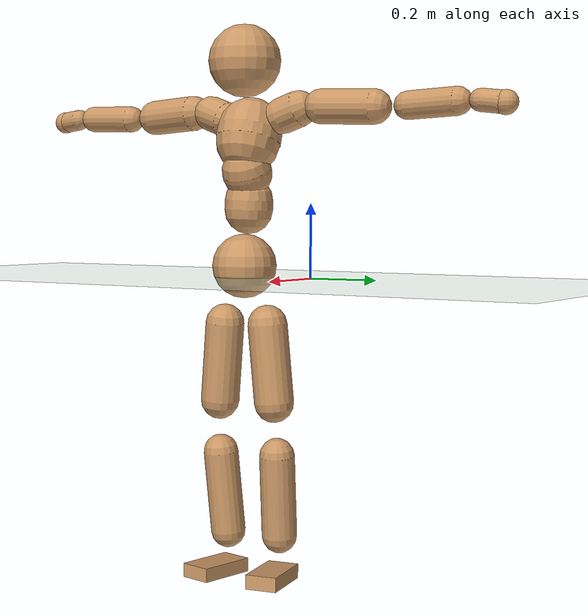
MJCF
<mujoco model="humanoid">
  <compiler coordinate="local"/>
  <default>
    <joint damping="0.0" armature="0.01" stiffness="0.0" limited="true"/>
    <geom conaffinity="1" condim="3" contype="7" margin="0.001" rgba="0.8 0.6 .4 1"/>
  </default>
  <asset>
    <texture type="skybox" builtin="gradient" rgb1=".4 .5 .6" rgb2="0 0 0" width="100" height="100"/>
    <texture builtin="flat" height="1278" mark="cross" markrgb="1 1 1" name="texgeom" random="0.01" rgb1="0.8 0.6 0.4" rgb2="0.8 0.6 0.4" type="cube" width="127"/>
    <texture builtin="checker" height="100" name="texplane" rgb1="0 0 0" rgb2="0.8 0.8 0.8" type="2d" width="100"/>
    <material name="MatPlane" reflectance="0.5" shininess="1" specular="1" texrepeat="60 60" texture="texplane"/>
    <material name="geom" texture="texgeom" texuniform="true"/>
  </asset>
  <worldbody>
    <light cutoff="100" diffuse="1 1 1" dir="-0 0 -1.3" directional="true" exponent="1" pos="0 0 1.3" specular=".1 .1 .1"/>
    <geom conaffinity="1" condim="3" name="floor" pos="0 0 0" rgba="0.8 0.9 0.8 1" size="100 100 .2" type="plane" material="MatPlane"/>
    <body name="Pelvis" pos="-0.0017 -0.2168 0.0284">
      <freejoint name="Pelvis"/>
      <geom type="sphere" contype="1" conaffinity="1" density="500" size="0.0887" pos="0.0000 0.0000 0.0000" name="Pelvis"/>
      <body name="L_Hip" pos="-0.0064 0.0651 -0.0884">
        <joint name="L_Hip_x" type="hinge" pos="0 0 0" axis="1 0 0" stiffness="800" damping="80" armature="0.02" range="-180.0000 180.0000"/>
        <joint name="L_Hip_y" type="hinge" pos="0 0 0" axis="0 1 0" stiffness="800" damping="80" armature="0.02" range="-180.0000 180.0000"/>
        <joint name="L_Hip_z" type="hinge" pos="0 0 0" axis="0 0 1" stiffness="800" damping="80" armature="0.02" range="-180.0000 180.0000"/>
        <geom type="capsule" contype="1" conaffinity="1" density="500" fromto="-0.0016 0.0062 -0.0717 -0.0063 0.0246 -0.2867" size="0.0548" name="L_Hip"/>
        <body name="L_Knee" pos="-0.0078 0.0308 -0.3583">
          <joint name="L_Knee_x" type="hinge" pos="0 0 0" axis="1 0 0" stiffness="800" damping="80" armature="0.02" range="-180.0000 180.0000"/>
          <joint name="L_Knee_y" type="hinge" pos="0 0 0" axis="0 1 0" stiffness="800" damping="80" armature="0.02" range="-180.0000 180.0000"/>
          <joint name="L_Knee_z" type="hinge" pos="0 0 0" axis="0 0 1" stiffness="800" damping="80" armature="0.02" range="-180.0000 180.0000"/>
          <geom type="capsule" contype="1" conaffinity="1" density="500" fromto="-0.0078 -0.0024 -0.0764 -0.0313 -0.0096 -0.3055" size="0.0488" name="L_Knee"/>
          <body name="L_Ankle" pos="-0.0391 -0.012 -0.3819">
            <joint name="L_Ankle_x" type="hinge" pos="0 0 0" axis="1 0 0" stiffness="800" damping="80" armature="0.02" range="-180.0000 180.0000"/>
            <joint name="L_Ankle_y" type="hinge" pos="0 0 0" axis="0 1 0" stiffness="800" damping="80" armature="0.02" range="-180.0000 180.0000"/>
            <joint name="L_Ankle_z" type="hinge" pos="0 0 0" axis="0 0 1" stiffness="800" damping="80" armature="0.02" range="-180.0000 180.0000"/>
            <geom type="box" contype="1" conaffinity="1" density="500" pos="0.0569 0.0110 -0.0276" size="0.0807 0.0444 0.02" quat="0.9954 0.0000 0.0000 0.0956" name="L_Ankle"/>
            <body name="L_Toe" pos="0.1138 0.0221 -0.0552">
              <joint name="L_Toe_x" type="hinge" pos="0 0 0" axis="1 0 0" stiffness="500" damping="50" armature="0.02" range="-180.0000 180.0000"/>
              <joint name="L_Toe_y" type="hinge" pos="0 0 0" axis="0 1 0" stiffness="500" damping="50" armature="0.02" range="-180.0000 180.0000"/>
              <joint name="L_Toe_z" type="hinge" pos="0 0 0" axis="0 0 1" stiffness="500" damping="50" armature="0.02" range="-180.0000 180.0000"/>
              <geom type="box" contype="1" conaffinity="1" density="500" pos="0.0000 0.0000 0.0274" size="0.0009 0.0022 0.001" quat="0.9948 0.0000 0.0000 0.1023" name="L_Toe"/>
            </body>
          </body>
        </body>
      </body>
      <body name="R_Hip" pos="-0.0028 -0.0627 -0.0884">
        <joint name="R_Hip_x" type="hinge" pos="0 0 0" axis="1 0 0" stiffness="800" damping="80" armature="0.02" range="-180.0000 180.0000"/>
        <joint name="R_Hip_y" type="hinge" pos="0 0 0" axis="0 1 0" stiffness="800" damping="80" armature="0.02" range="-180.0000 180.0000"/>
        <joint name="R_Hip_z" type="hinge" pos="0 0 0" axis="0 0 1" stiffness="800" damping="80" armature="0.02" range="-180.0000 180.0000"/>
        <geom type="capsule" contype="1" conaffinity="1" density="500" fromto="-0.0019 -0.0072 -0.0729 -0.0077 -0.0289 -0.2917" size="0.0541" name="R_Hip"/>
        <body name="R_Knee" pos="-0.0096 -0.0361 -0.3647">
          <joint name="R_Knee_x" type="hinge" pos="0 0 0" axis="1 0 0" stiffness="800" damping="80" armature="0.02" range="-180.0000 180.0000"/>
          <joint name="R_Knee_y" type="hinge" pos="0 0 0" axis="0 1 0" stiffness="800" damping="80" armature="0.02" range="-180.0000 180.0000"/>
          <joint name="R_Knee_z" type="hinge" pos="0 0 0" axis="0 0 1" stiffness="800" damping="80" armature="0.02" range="-180.0000 180.0000"/>
          <geom type="capsule" contype="1" conaffinity="1" density="500" fromto="-0.0075 0.0029 -0.0765 -0.0299 0.0117 -0.3058" size="0.0492" name="R_Knee"/>
          <body name="R_Ankle" pos="-0.0374 0.0147 -0.3823">
            <joint name="R_Ankle_x" type="hinge" pos="0 0 0" axis="1 0 0" stiffness="800" damping="80" armature="0.02" range="-180.0000 180.0000"/>
            <joint name="R_Ankle_y" type="hinge" pos="0 0 0" axis="0 1 0" stiffness="800" damping="80" armature="0.02" range="-180.0000 180.0000"/>
            <joint name="R_Ankle_z" type="hinge" pos="0 0 0" axis="0 0 1" stiffness="800" damping="80" armature="0.02" range="-180.0000 180.0000"/>
            <geom type="box" contype="1" conaffinity="1" density="500" pos="0.0587 -0.0096 -0.0227" size="0.0825 0.0461 0.0193" quat="0.9967 0.0000 0.0000 -0.0811" name="R_Ankle"/>
            <body name="R_Toe" pos="0.1173 -0.0192 -0.0454">
              <joint name="R_Toe_x" type="hinge" pos="0 0 0" axis="1 0 0" stiffness="500" damping="50" armature="0.02" range="-180.0000 180.0000"/>
              <joint name="R_Toe_y" type="hinge" pos="0 0 0" axis="0 1 0" stiffness="500" damping="50" armature="0.02" range="-180.0000 180.0000"/>
              <joint name="R_Toe_z" type="hinge" pos="0 0 0" axis="0 0 1" stiffness="500" damping="50" armature="0.02" range="-180.0000 180.0000"/>
              <geom type="box" contype="1" conaffinity="1" density="500" pos="0.0000 0.0000 0.0252" size="0.0009 0.0023 0.0011" quat="0.9974 0.0000 0.0000 -0.0716" name="R_Toe"/>
            </body>
          </body>
        </body>
      </body>
      <body name="Torso" pos="-0.0224 -0.0029 0.1026">
        <joint name="Torso_x" type="hinge" pos="0 0 0" axis="1 0 0" stiffness="1000" damping="100" armature="0.02" range="-180.0000 180.0000"/>
        <joint name="Torso_y" type="hinge" pos="0 0 0" axis="0 1 0" stiffness="1000" damping="100" armature="0.02" range="-180.0000 180.0000"/>
        <joint name="Torso_z" type="hinge" pos="0 0 0" axis="0 0 1" stiffness="1000" damping="100" armature="0.02" range="-180.0000 180.0000"/>
        <geom type="capsule" contype="1" conaffinity="1" density="500" fromto="-0.0001 0.0026 0.0775 -0.0000 0.0017 0.0517" size="0.066681" name="Torso"/>
        <body name="Spine" pos="-0.0001 0.0043 0.1292">
          <joint name="Spine_x" type="hinge" pos="0 0 0" axis="1 0 0" stiffness="1000" damping="100" armature="0.02" range="-180.0000 180.0000"/>
          <joint name="Spine_y" type="hinge" pos="0 0 0" axis="0 1 0" stiffness="1000" damping="100" armature="0.02" range="-180.0000 180.0000"/>
          <joint name="Spine_z" type="hinge" pos="0 0 0" axis="0 0 1" stiffness="1000" damping="100" armature="0.02" range="-180.0000 180.0000"/>
          <geom type="capsule" contype="1" conaffinity="1" density="500" fromto="0.0162 0.0016 0.0304 0.0108 0.0010 0.0203" size="0.068541" name="Spine"/>
          <body name="Chest" pos="0.027 0.0026 0.0507">
            <joint name="Chest_x" type="hinge" pos="0 0 0" axis="1 0 0" stiffness="1000" damping="100" armature="0.02" range="-180.0000 180.0000"/>
            <joint name="Chest_y" type="hinge" pos="0 0 0" axis="0 1 0" stiffness="1000" damping="100" armature="0.02" range="-180.0000 180.0000"/>
            <joint name="Chest_z" type="hinge" pos="0 0 0" axis="0 0 1" stiffness="1000" damping="100" armature="0.02" range="-180.0000 180.0000"/>
            <geom type="capsule" contype="1" conaffinity="1" density="500" fromto="-0.0275 -0.0009 0.0902 -0.0183 -0.0006 0.0601" size="0.089838" name="Chest"/>
            <body name="Neck" pos="-0.0525 -0.0024 0.2125">
              <joint name="Neck_x" type="hinge" pos="0 0 0" axis="1 0 0" stiffness="500" damping="50" armature="0.02" range="-180.0000 180.0000"/>
              <joint name="Neck_y" type="hinge" pos="0 0 0" axis="0 1 0" stiffness="500" damping="50" armature="0.02" range="-180.0000 180.0000"/>
              <joint name="Neck_z" type="hinge" pos="0 0 0" axis="0 0 1" stiffness="500" damping="50" armature="0.02" range="-180.0000 180.0000"/>
              <geom type="capsule" contype="1" conaffinity="1" density="500" fromto="0.0105 0.0006 0.0129 0.0418 0.0026 0.0515" size="0.038967" name="Neck"/>
              <body name="Head" pos="0.0523 0.0032 0.0644">
                <joint name="Head_x" type="hinge" pos="0 0 0" axis="1 0 0" stiffness="500" damping="50" armature="0.02" range="-180.0000 180.0000"/>
                <joint name="Head_y" type="hinge" pos="0 0 0" axis="0 1 0" stiffness="500" damping="50" armature="0.02" range="-180.0000 180.0000"/>
                <joint name="Head_z" type="hinge" pos="0 0 0" axis="0 0 1" stiffness="500" damping="50" armature="0.02" range="-180.0000 180.0000"/>
                <geom type="sphere" contype="1" conaffinity="1" density="500" size="0.0991" pos="0.0000 0.0000 0.0000" name="Head"/>
              </body>
            </body>
            <body name="L_Thorax" pos="-0.0405 0.0769 0.1204">
              <joint name="L_Thorax_x" type="hinge" pos="0 0 0" axis="1 0 0" stiffness="500" damping="50" armature="0.02" range="-180.0000 180.0000"/>
              <joint name="L_Thorax_y" type="hinge" pos="0 0 0" axis="0 1 0" stiffness="500" damping="50" armature="0.02" range="-180.0000 180.0000"/>
              <joint name="L_Thorax_z" type="hinge" pos="0 0 0" axis="0 0 1" stiffness="500" damping="50" armature="0.02" range="-180.0000 180.0000"/>
              <geom type="capsule" contype="1" conaffinity="1" density="500" fromto="-0.0015 0.0173 0.0059 -0.0059 0.0693 0.0237" size="0.0496" name="L_Thorax"/>
              <body name="L_Shoulder" pos="-0.0074 0.0866 0.0296">
                <joint name="L_Shoulder_x" type="hinge" pos="0 0 0" axis="1 0 0" stiffness="500" damping="50" armature="0.02" range="-720.0000 720.0000"/>
                <joint name="L_Shoulder_y" type="hinge" pos="0 0 0" axis="0 1 0" stiffness="500" damping="50" armature="0.02" range="-720.0000 720.0000"/>
                <joint name="L_Shoulder_z" type="hinge" pos="0 0 0" axis="0 0 1" stiffness="500" damping="50" armature="0.02" range="-720.0000 720.0000"/>
                <geom type="capsule" contype="1" conaffinity="1" density="500" fromto="-0.0053 0.0505 -0.0019 -0.0213 0.2021 -0.0077" size="0.0476" name="L_Shoulder"/>
                <body name="L_Elbow" pos="-0.0266 0.2527 -0.0096">
                  <joint name="L_Elbow_x" type="hinge" pos="0 0 0" axis="1 0 0" stiffness="500" damping="50" armature="0.02" range="-720.0000 720.0000"/>
                  <joint name="L_Elbow_y" type="hinge" pos="0 0 0" axis="0 1 0" stiffness="500" damping="50" armature="0.02" range="-720.0000 720.0000"/>
                  <joint name="L_Elbow_z" type="hinge" pos="0 0 0" axis="0 0 1" stiffness="500" damping="50" armature="0.02" range="-720.0000 720.0000"/>
                  <geom type="capsule" contype="1" conaffinity="1" density="500" fromto="-0.0002 0.0470 0.0017 -0.0009 0.1879 0.0067" size="0.0375" name="L_Elbow"/>
                  <body name="L_Wrist" pos="-0.0011 0.2348 0.0084">
                    <joint name="L_Wrist_x" type="hinge" pos="0 0 0" axis="1 0 0" stiffness="300" damping="30" armature="0.02" range="-180.0000 180.0000"/>
                    <joint name="L_Wrist_y" type="hinge" pos="0 0 0" axis="0 1 0" stiffness="300" damping="30" armature="0.02" range="-180.0000 180.0000"/>
                    <joint name="L_Wrist_z" type="hinge" pos="0 0 0" axis="0 0 1" stiffness="300" damping="30" armature="0.02" range="-180.0000 180.0000"/>
                    <geom type="capsule" contype="1" conaffinity="1" density="500" fromto="-0.0026 0.0158 -0.0019 -0.0105 0.0633 -0.0075" size="0.0298" name="L_Wrist"/>
                    <body name="L_Hand" pos="-0.0131 0.0791 -0.0094">
                      <joint name="L_Hand_x" type="hinge" pos="0 0 0" axis="1 0 0" stiffness="300" damping="30" armature="0.02" range="-180.0000 180.0000"/>
                      <joint name="L_Hand_y" type="hinge" pos="0 0 0" axis="0 1 0" stiffness="300" damping="30" armature="0.02" range="-180.0000 180.0000"/>
                      <joint name="L_Hand_z" type="hinge" pos="0 0 0" axis="0 0 1" stiffness="300" damping="30" armature="0.02" range="-180.0000 180.0000"/>
                      <geom type="sphere" contype="1" conaffinity="1" density="500" size="0.0319" pos="0.0000 0.0000 0.0000" name="L_Hand"/>
                    </body>
                  </body>
                </body>
              </body>
            </body>
            <body name="R_Thorax" pos="-0.0446 -0.0789 0.1179">
              <joint name="R_Thorax_x" type="hinge" pos="0 0 0" axis="1 0 0" stiffness="500" damping="50" armature="0.02" range="-180.0000 180.0000"/>
              <joint name="R_Thorax_y" type="hinge" pos="0 0 0" axis="0 1 0" stiffness="500" damping="50" armature="0.02" range="-180.0000 180.0000"/>
              <joint name="R_Thorax_z" type="hinge" pos="0 0 0" axis="0 0 1" stiffness="500" damping="50" armature="0.02" range="-180.0000 180.0000"/>
              <geom type="capsule" contype="1" conaffinity="1" density="500" fromto="-0.0021 -0.0180 0.0061 -0.0085 -0.0718 0.0246" size="0.0488" name="R_Thorax"/>
              <body name="R_Shoulder" pos="-0.0106 -0.0898 0.0307">
                <joint name="R_Shoulder_x" type="hinge" pos="0 0 0" axis="1 0 0" stiffness="500" damping="50" armature="0.02" range="-720.0000 720.0000"/>
                <joint name="R_Shoulder_y" type="hinge" pos="0 0 0" axis="0 1 0" stiffness="500" damping="50" armature="0.02" range="-720.0000 720.0000"/>
                <joint name="R_Shoulder_z" type="hinge" pos="0 0 0" axis="0 0 1" stiffness="500" damping="50" armature="0.02" range="-720.0000 720.0000"/>
                <geom type="capsule" contype="1" conaffinity="1" density="500" fromto="-0.0037 -0.0490 -0.0024 -0.0147 -0.1958 -0.0095" size="0.0493" name="R_Shoulder"/>
                <body name="R_Elbow" pos="-0.0183 -0.2448 -0.0118">
                  <joint name="R_Elbow_x" type="hinge" pos="0 0 0" axis="1 0 0" stiffness="500" damping="50" armature="0.02" range="-720.0000 720.0000"/>
                  <joint name="R_Elbow_y" type="hinge" pos="0 0 0" axis="0 1 0" stiffness="500" damping="50" armature="0.02" range="-720.0000 720.0000"/>
                  <joint name="R_Elbow_z" type="hinge" pos="0 0 0" axis="0 0 1" stiffness="500" damping="50" armature="0.02" range="-720.0000 720.0000"/>
                  <geom type="capsule" contype="1" conaffinity="1" density="500" fromto="-0.0009 -0.0485 0.0018 -0.0036 -0.1940 0.0073" size="0.0379" name="R_Elbow"/>
                  <body name="R_Wrist" pos="-0.0045 -0.2425 0.0091">
                    <joint name="R_Wrist_x" type="hinge" pos="0 0 0" axis="1 0 0" stiffness="300" damping="30" armature="0.02" range="-180.0000 180.0000"/>
                    <joint name="R_Wrist_y" type="hinge" pos="0 0 0" axis="0 1 0" stiffness="300" damping="30" armature="0.02" range="-180.0000 180.0000"/>
                    <joint name="R_Wrist_z" type="hinge" pos="0 0 0" axis="0 0 1" stiffness="300" damping="30" armature="0.02" range="-180.0000 180.0000"/>
                    <geom type="capsule" contype="1" conaffinity="1" density="500" fromto="-0.0020 -0.0160 -0.0014 -0.0081 -0.0639 -0.0057" size="0.0306" name="R_Wrist"/>
                    <body name="R_Hand" pos="-0.0102 -0.0798 -0.0071">
                      <joint name="R_Hand_x" type="hinge" pos="0 0 0" axis="1 0 0" stiffness="300" damping="30" armature="0.02" range="-180.0000 180.0000"/>
                      <joint name="R_Hand_y" type="hinge" pos="0 0 0" axis="0 1 0" stiffness="300" damping="30" armature="0.02" range="-180.0000 180.0000"/>
                      <joint name="R_Hand_z" type="hinge" pos="0 0 0" axis="0 0 1" stiffness="300" damping="30" armature="0.02" range="-180.0000 180.0000"/>
                      <geom type="sphere" contype="1" conaffinity="1" density="500" size="0.0321" pos="0.0000 0.0000 0.0000" name="R_Hand"/>
                    </body>
                  </body>
                </body>
              </body>
            </body>
          </body>
        </body>
      </body>
    </body>
  </worldbody>
  <actuator>
    <motor name="L_Hip_x" joint="L_Hip_x" gear="500"/>
    <motor name="L_Hip_y" joint="L_Hip_y" gear="500"/>
    <motor name="L_Hip_z" joint="L_Hip_z" gear="500"/>
    <motor name="L_Knee_x" joint="L_Knee_x" gear="500"/>
    <motor name="L_Knee_y" joint="L_Knee_y" gear="500"/>
    <motor name="L_Knee_z" joint="L_Knee_z" gear="500"/>
    <motor name="L_Ankle_x" joint="L_Ankle_x" gear="500"/>
    <motor name="L_Ankle_y" joint="L_Ankle_y" gear="500"/>
    <motor name="L_Ankle_z" joint="L_Ankle_z" gear="500"/>
    <motor name="L_Toe_x" joint="L_Toe_x" gear="500"/>
    <motor name="L_Toe_y" joint="L_Toe_y" gear="500"/>
    <motor name="L_Toe_z" joint="L_Toe_z" gear="500"/>
    <motor name="R_Hip_x" joint="R_Hip_x" gear="500"/>
    <motor name="R_Hip_y" joint="R_Hip_y" gear="500"/>
    <motor name="R_Hip_z" joint="R_Hip_z" gear="500"/>
    <motor name="R_Knee_x" joint="R_Knee_x" gear="500"/>
    <motor name="R_Knee_y" joint="R_Knee_y" gear="500"/>
    <motor name="R_Knee_z" joint="R_Knee_z" gear="500"/>
    <motor name="R_Ankle_x" joint="R_Ankle_x" gear="500"/>
    <motor name="R_Ankle_y" joint="R_Ankle_y" gear="500"/>
    <motor name="R_Ankle_z" joint="R_Ankle_z" gear="500"/>
    <motor name="R_Toe_x" joint="R_Toe_x" gear="500"/>
    <motor name="R_Toe_y" joint="R_Toe_y" gear="500"/>
    <motor name="R_Toe_z" joint="R_Toe_z" gear="500"/>
    <motor name="Torso_x" joint="Torso_x" gear="500"/>
    <motor name="Torso_y" joint="Torso_y" gear="500"/>
    <motor name="Torso_z" joint="Torso_z" gear="500"/>
    <motor name="Spine_x" joint="Spine_x" gear="500"/>
    <motor name="Spine_y" joint="Spine_y" gear="500"/>
    <motor name="Spine_z" joint="Spine_z" gear="500"/>
    <motor name="Chest_x" joint="Chest_x" gear="500"/>
    <motor name="Chest_y" joint="Chest_y" gear="500"/>
    <motor name="Chest_z" joint="Chest_z" gear="500"/>
    <motor name="Neck_x" joint="Neck_x" gear="500"/>
    <motor name="Neck_y" joint="Neck_y" gear="500"/>
    <motor name="Neck_z" joint="Neck_z" gear="500"/>
    <motor name="Head_x" joint="Head_x" gear="500"/>
    <motor name="Head_y" joint="Head_y" gear="500"/>
    <motor name="Head_z" joint="Head_z" gear="500"/>
    <motor name="L_Thorax_x" joint="L_Thorax_x" gear="500"/>
    <motor name="L_Thorax_y" joint="L_Thorax_y" gear="500"/>
    <motor name="L_Thorax_z" joint="L_Thorax_z" gear="500"/>
    <motor name="L_Shoulder_x" joint="L_Shoulder_x" gear="500"/>
    <motor name="L_Shoulder_y" joint="L_Shoulder_y" gear="500"/>
    <motor name="L_Shoulder_z" joint="L_Shoulder_z" gear="500"/>
    <motor name="L_Elbow_x" joint="L_Elbow_x" gear="500"/>
    <motor name="L_Elbow_y" joint="L_Elbow_y" gear="500"/>
    <motor name="L_Elbow_z" joint="L_Elbow_z" gear="500"/>
    <motor name="L_Wrist_x" joint="L_Wrist_x" gear="500"/>
    <motor name="L_Wrist_y" joint="L_Wrist_y" gear="500"/>
    <motor name="L_Wrist_z" joint="L_Wrist_z" gear="500"/>
    <motor name="L_Hand_x" joint="L_Hand_x" gear="500"/>
    <motor name="L_Hand_y" joint="L_Hand_y" gear="500"/>
    <motor name="L_Hand_z" joint="L_Hand_z" gear="500"/>
    <motor name="R_Thorax_x" joint="R_Thorax_x" gear="500"/>
    <motor name="R_Thorax_y" joint="R_Thorax_y" gear="500"/>
    <motor name="R_Thorax_z" joint="R_Thorax_z" gear="500"/>
    <motor name="R_Shoulder_x" joint="R_Shoulder_x" gear="500"/>
    <motor name="R_Shoulder_y" joint="R_Shoulder_y" gear="500"/>
    <motor name="R_Shoulder_z" joint="R_Shoulder_z" gear="500"/>
    <motor name="R_Elbow_x" joint="R_Elbow_x" gear="500"/>
    <motor name="R_Elbow_y" joint="R_Elbow_y" gear="500"/>
    <motor name="R_Elbow_z" joint="R_Elbow_z" gear="500"/>
    <motor name="R_Wrist_x" joint="R_Wrist_x" gear="500"/>
    <motor name="R_Wrist_y" joint="R_Wrist_y" gear="500"/>
    <motor name="R_Wrist_z" joint="R_Wrist_z" gear="500"/>
    <motor name="R_Hand_x" joint="R_Hand_x" gear="500"/>
    <motor name="R_Hand_y" joint="R_Hand_y" gear="500"/>
    <motor name="R_Hand_z" joint="R_Hand_z" gear="500"/>
  </actuator>
  <contact>
    <exclude body1="Torso" body2="Chest"/>
    <exclude body1="Head" body2="Chest"/>
    <exclude body1="R_Knee" body2="R_Toe"/>
    <exclude body1="R_Knee" body2="L_Ankle"/>
    <exclude body1="R_Knee" body2="L_Toe"/>
    <exclude body1="L_Knee" body2="L_Toe"/>
    <exclude body1="L_Knee" body2="R_Ankle"/>
    <exclude body1="L_Knee" body2="R_Toe"/>
    <exclude body1="L_Shoulder" body2="Chest"/>
    <exclude body1="R_Shoulder" body2="Chest"/>
  </contact>
  <sensor/>
  <size njmax="700" nconmax="700"/>
</mujoco>
